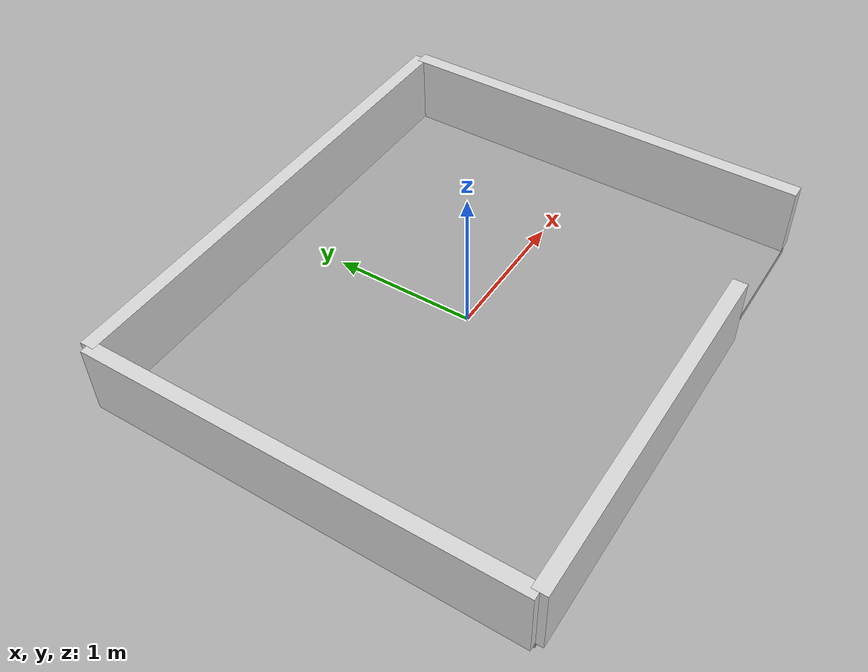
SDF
<?xml version="1.0" ?>
<sdf version="1.8">
  <world name="small_arena">

    <!-- ── Required Gazebo Harmonic / ROS 2 Jazzy plugins ── -->
    <plugin filename="gz-sim-physics-system"
            name="gz::sim::systems::Physics"/>
    <plugin filename="gz-sim-user-commands-system"
            name="gz::sim::systems::UserCommands"/>
    <plugin filename="gz-sim-scene-broadcaster-system"
            name="gz::sim::systems::SceneBroadcaster"/>
    <plugin filename="gz-sim-sensors-system"
            name="gz::sim::systems::Sensors">
      <render_engine>ogre2</render_engine>
    </plugin>
    <plugin filename="gz-sim-imu-system"
            name="gz::sim::systems::Imu"/>
    <plugin filename="gz-sim-contact-system"
            name="gz::sim::systems::Contact"/>

    <!-- ── Physics ── -->
    <physics name="1ms" type="ignored">
      <max_step_size>0.001</max_step_size>
      <real_time_factor>1.0</real_time_factor>
    </physics>

    <scene>
      <shadows>true</shadows>
    </scene>

    <!-- ── Sun ── -->
    <light name="sun" type="directional">
      <cast_shadows>true</cast_shadows>
      <pose>0 0 10 0 0 0</pose>
      <diffuse>0.8 0.8 0.8 1</diffuse>
      <specular>0.1 0.1 0.1 1</specular>
      <attenuation>
        <range>1000</range>
        <constant>0.9</constant>
        <linear>0.01</linear>
        <quadratic>0.001</quadratic>
      </attenuation>
      <direction>-0.5 0.5 -1</direction>
    </light>

    <!-- ═══════════════════════════════════════════════════════════
         FLOOR  –  3.5 m × 3.0 m box, top surface flush with z = 0
         ═══════════════════════════════════════════════════════════ -->
    <model name="arena_floor">
      <static>true</static>
      <!-- centre sits 0.025 m below z=0 so the top face is at z=0 -->
      <pose>0 0 -0.025 0 0 0</pose>
      <link name="link">
        <collision name="collision">
          <geometry>
            <box><size>3.5 3.0 0.05</size></box>
          </geometry>
        </collision>
        <visual name="visual">
          <geometry>
            <box><size>3.5 3.0 0.05</size></box>
          </geometry>
          <material>
            <!-- light grey floor -->
            <ambient>0.65 0.65 0.65 1</ambient>
            <diffuse>0.65 0.65 0.65 1</diffuse>
          </material>
        </visual>
      </link>
    </model>

    <model name="wall_south">
      <static>true</static>
      <!-- x-centre of 2.5 m segment: (-1.75 + 0.75) / 2 = -0.50 -->
      <pose>-0.50 -1.50 0.25 0 0 0</pose>
      <link name="link">
        <collision name="collision">
          <geometry>
            <box><size>2.5 0.1 0.5</size></box>
          </geometry>
        </collision>
        <visual name="visual">
          <geometry>
            <box><size>2.5 0.1 0.5</size></box>
          </geometry>
          <material>
            <ambient>0.85 0.85 0.85 1</ambient>
            <diffuse>0.85 0.85 0.85 1</diffuse>
          </material>
        </visual>
      </link>
    </model>
    <!-- gap from x = +0.75 to +1.75 is the 1 m entrance opening -->

    <model name="wall_north">
      <static>true</static>
      <pose>0 1.50 0.25 0 0 0</pose>
      <link name="link">
        <collision name="collision">
          <geometry>
            <box><size>3.5 0.1 0.5</size></box>
          </geometry>
        </collision>
        <visual name="visual">
          <geometry>
            <box><size>3.5 0.1 0.5</size></box>
          </geometry>
          <material>
            <ambient>0.85 0.85 0.85 1</ambient>
            <diffuse>0.85 0.85 0.85 1</diffuse>
          </material>
        </visual>
      </link>
    </model>

    <model name="wall_left">
      <static>true</static>
      <pose>-1.75 0 0.25 0 0 0</pose>
      <link name="link">
        <collision name="collision">
          <geometry>
            <box><size>0.1 3.0 0.5</size></box>
          </geometry>
        </collision>
        <visual name="visual">
          <geometry>
            <box><size>0.1 3.0 0.5</size></box>
          </geometry>
          <material>
            <ambient>0.85 0.85 0.85 1</ambient>
            <diffuse>0.85 0.85 0.85 1</diffuse>
          </material>
        </visual>
      </link>
    </model>

    <model name="wall_right">
      <static>true</static>
      <pose>1.75 0 0.25 0 0 0</pose>
      <link name="link">
        <collision name="collision">
          <geometry>
            <box><size>0.1 3.0 0.5</size></box>
          </geometry>
        </collision>
        <visual name="visual">
          <geometry>
            <box><size>0.1 3.0 0.5</size></box>
          </geometry>
          <material>
            <ambient>0.85 0.85 0.85 1</ambient>
            <diffuse>0.85 0.85 0.85 1</diffuse>
          </material>
        </visual>
      </link>
    </model>

  </world>
</sdf>
